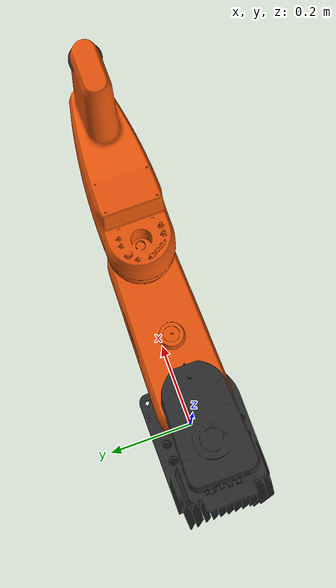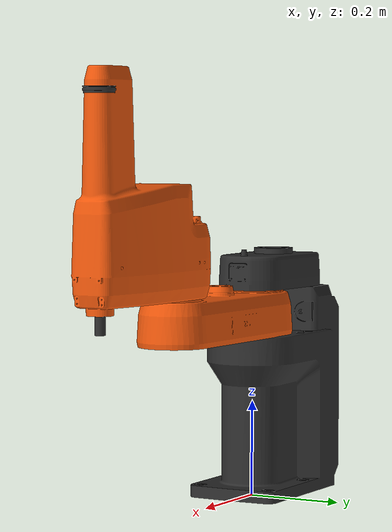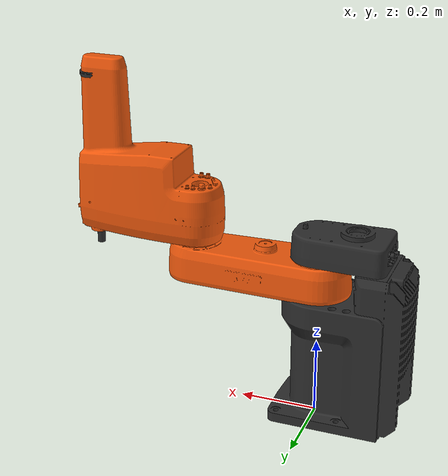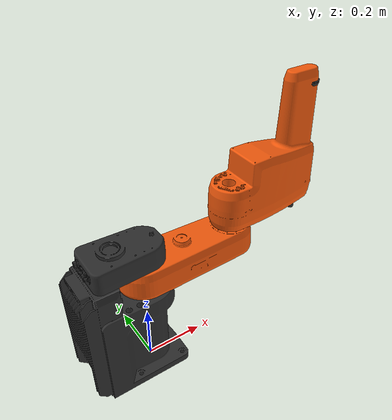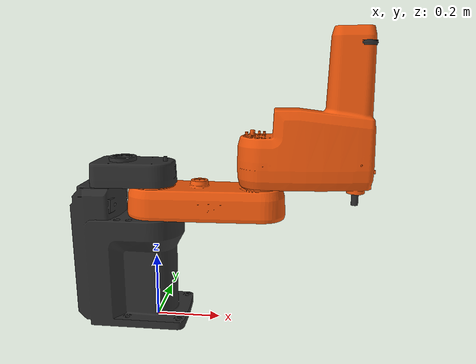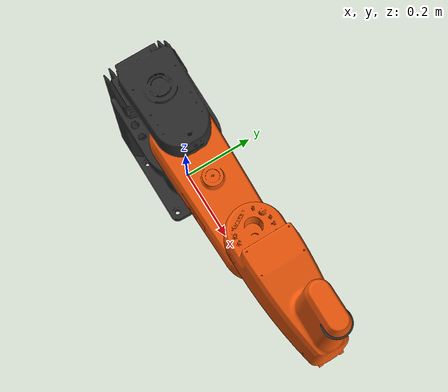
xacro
<?xml version="1.0"?>
<robot xmlns:xacro="http://www.ros.org/wiki/xacro" name="omron_cobra_s600">

  <xacro:arg name="use_meshes" default="true"/>

  <material name="cobra_orange"><color rgba="0.95 0.35 0.05 1.0"/></material>
  <material name="dark_gray"><color rgba="0.18 0.18 0.18 1.0"/></material>

  <link name="world"/>
  <joint name="world_joint" type="fixed">
    <parent link="world"/>
    <child link="base_link"/>
    <origin xyz="0 0 0" rpy="0 0 0"/>
  </joint>
  <gazebo reference="world_joint"><preserveFixedJoint>true</preserveFixedJoint></gazebo>

  <link name="base_link">
    <inertial>
      <origin xyz="0 0 0.193695" rpy="0 0 0"/>
      <mass value="16.102614"/>
      <inertia ixx="0.304435" ixy="0" ixz="0" iyy="0.304435" iyz="0" izz="0.206113"/>
    </inertial>
    <xacro:if value="$(arg use_meshes)">
      <visual><origin xyz="0 0 0" rpy="0 0 0"/><geometry><mesh filename="package://omron_cobra_s600_description/meshes/fixed-base.STL" scale="0.001 0.001 0.001"/></geometry><material name="dark_gray"/></visual>
    </xacro:if>
    <xacro:unless value="$(arg use_meshes)">
      <visual><origin xyz="0 0 0.193695" rpy="0 0 0"/><geometry><cylinder radius="0.16" length="0.38739"/></geometry><material name="dark_gray"/></visual>
    </xacro:unless>
    <collision><origin xyz="0 0 0.193695" rpy="0 0 0"/><geometry><cylinder radius="0.16" length="0.38739"/></geometry></collision>
  </link>

  <joint name="joint_1" type="revolute">
    <parent link="base_link"/><child link="inner_link"/><origin xyz="0 0 0.38739" rpy="0 0 0"/><axis xyz="0 0 1"/>
    <limit lower="-1.832596" upper="1.832596" effort="100.0" velocity="6.736676"/><dynamics damping="0.2" friction="0.0"/>
  </joint>
  <link name="inner_link">
    <inertial><origin xyz="0.156103 0.000002 -0.000872" rpy="0 0 0"/><mass value="16.281256"/><inertia ixx="0.041425" ixy="-0.000003" ixz="0.004354" iyy="0.301218" iyz="0.000001" izz="0.318069"/></inertial>
    <xacro:if value="$(arg use_meshes)"><visual><origin xyz="0 0 0" rpy="0 0 0"/><geometry><mesh filename="package://omron_cobra_s600_description/meshes/link1.STL" scale="0.001 0.001 0.001"/></geometry><material name="cobra_orange"/></visual></xacro:if>
    <xacro:unless value="$(arg use_meshes)"><visual><origin xyz="0.1625 0 0" rpy="0 0 0"/><geometry><box size="0.325 0.10 0.10"/></geometry><material name="cobra_orange"/></visual></xacro:unless>
    <collision><origin xyz="0.1625 0 0" rpy="0 0 0"/><geometry><box size="0.325 0.10 0.10"/></geometry></collision>
  </link>

  <joint name="joint_2" type="revolute">
    <parent link="inner_link"/><child link="outer_link"/><origin xyz="0.325 0 0.05170" rpy="0 0 0"/><axis xyz="0 0 1"/>
    <limit lower="-2.617994" upper="2.617994" effort="100.0" velocity="12.566371"/><dynamics damping="0.2" friction="0.0"/>
  </joint>
  <link name="outer_link">
    <inertial><origin xyz="0.063852 0.000174 0.088173" rpy="0 0 0"/><mass value="8.424651"/><inertia ixx="0.065913" ixy="-0.000130" ixz="0.019664" iyy="0.155681" iyz="0.000039" izz="0.114892"/></inertial>
    <xacro:if value="$(arg use_meshes)"><visual><origin xyz="0 0 0" rpy="0 0 0"/><geometry><mesh filename="package://omron_cobra_s600_description/meshes/link2.STL" scale="0.001 0.001 0.001"/></geometry><material name="cobra_orange"/></visual></xacro:if>
    <xacro:unless value="$(arg use_meshes)"><visual><origin xyz="0.1375 0 0.06" rpy="0 0 0"/><geometry><box size="0.275 0.10 0.12"/></geometry><material name="cobra_orange"/></visual></xacro:unless>
    <collision><origin xyz="0.1375 0 0.06" rpy="0 0 0"/><geometry><box size="0.275 0.10 0.12"/></geometry></collision>
  </link>

  <joint name="joint_3" type="prismatic">
    <parent link="outer_link"/><child link="quill_slide"/><origin xyz="0.275 0 0.411042" rpy="0 0 0"/><axis xyz="0 0 -1"/>
    <limit lower="0.0" upper="0.210" effort="500.0" velocity="1.10"/><dynamics damping="5.0" friction="0.0"/>
  </joint>
  <link name="quill_slide"><inertial><mass value="0.0001"/><inertia ixx="1e-8" ixy="0" ixz="0" iyy="1e-8" iyz="0" izz="1e-8"/></inertial></link>

  <joint name="joint_4" type="revolute">
    <parent link="quill_slide"/><child link="quill_link"/><origin xyz="0 0 0" rpy="0 0 0"/><axis xyz="0 0 1"/>
    <limit lower="-6.283185" upper="6.283185" effort="20.0" velocity="20.943951"/><dynamics damping="0.05" friction="0.0"/>
  </joint>
  <link name="quill_link">
    <inertial><origin xyz="0.000069 -0.000119 -0.180630" rpy="0 0 0"/><mass value="0.191479"/><inertia ixx="0.000004" ixy="0" ixz="0" iyy="0.000004" iyz="0" izz="0.000002"/></inertial>
    <xacro:if value="$(arg use_meshes)"><visual><origin xyz="0 0 0" rpy="0 0 0"/><geometry><mesh filename="package://omron_cobra_s600_description/meshes/link3.STL" scale="0.001 0.001 0.001"/></geometry><material name="dark_gray"/></visual></xacro:if>
    <xacro:unless value="$(arg use_meshes)"><visual><origin xyz="0 0 -0.18" rpy="0 0 0"/><geometry><cylinder radius="0.018" length="0.36"/></geometry><material name="dark_gray"/></visual></xacro:unless>
    <collision><origin xyz="0 0 -0.18" rpy="0 0 0"/><geometry><cylinder radius="0.018" length="0.36"/></geometry></collision>
  </link>

  <ros2_control name="GazeboSystem" type="system">
    <hardware><plugin>gz_ros2_control/GazeboSimSystem</plugin></hardware>
    <joint name="joint_1"><command_interface name="position"/><command_interface name="effort"/><state_interface name="position"/><state_interface name="velocity"/></joint>
    <joint name="joint_2"><command_interface name="position"/><command_interface name="effort"/><state_interface name="position"/><state_interface name="velocity"/></joint>
    <joint name="joint_3"><command_interface name="position"/><command_interface name="effort"/><state_interface name="position"/><state_interface name="velocity"/></joint>
    <joint name="joint_4"><command_interface name="position"/><command_interface name="effort"/><state_interface name="position"/><state_interface name="velocity"/></joint>
  </ros2_control>

  <gazebo>
    <plugin filename="gz_ros2_control-system" name="gz_ros2_control::GazeboSimROS2ControlPlugin">
      <parameters>$(find omron_cobra_s600_description)/config/controllers.yaml</parameters>
    </plugin>
  </gazebo>
</robot>
